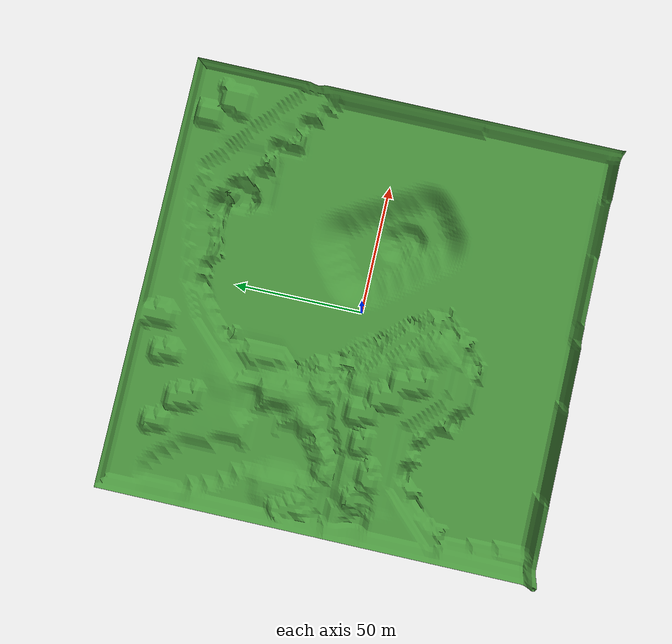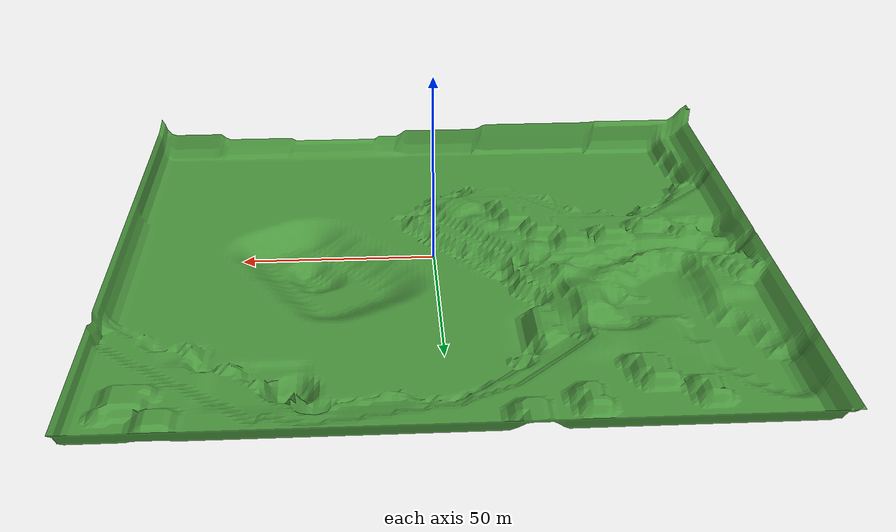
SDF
<?xml version="1.0" ?>
<sdf version="1.5">

<model name="seabed">
  <static>true</static>
  <link name="seabed_link">

  <visual name="seafloor">
    <pose>0 0 0 0 0 0</pose>
    <geometry>
      <mesh><uri>model://seabed/seabed.stl</uri><scale>5 5 5</scale></mesh>
    </geometry>
    <material>
      <script>
        <uri>file://media/materials/scripts/gazebo.material</uri>
        <name>Gazebo/Grass</name>
      </script>
    </material>
  </visual>

  <collision name="seafloor">
    <pose>0 0 0 0 0 0</pose>
    <geometry>
      <mesh><uri>model://seabed/seabed.stl</uri><scale>5 5 5</scale></mesh>
    </geometry>
  </collision>

  </link>
</model>
</sdf>
